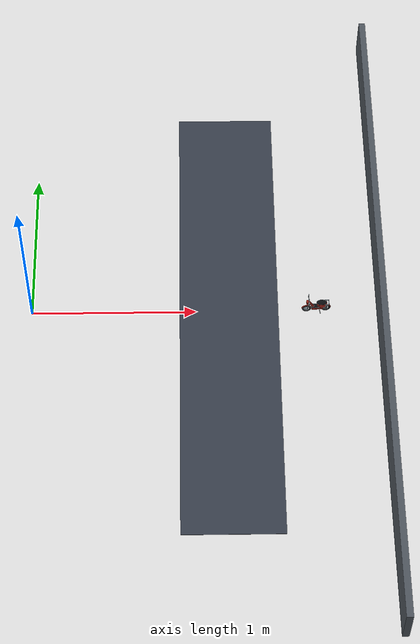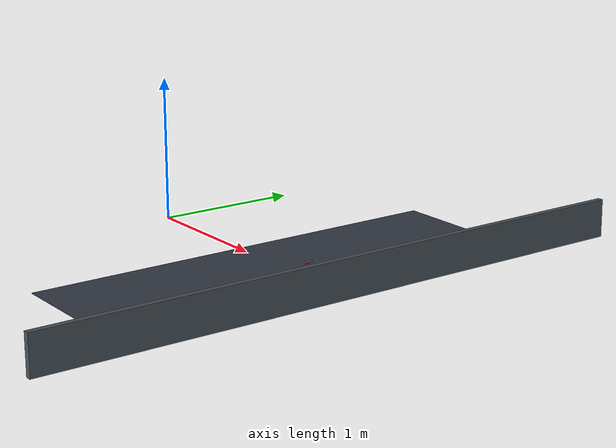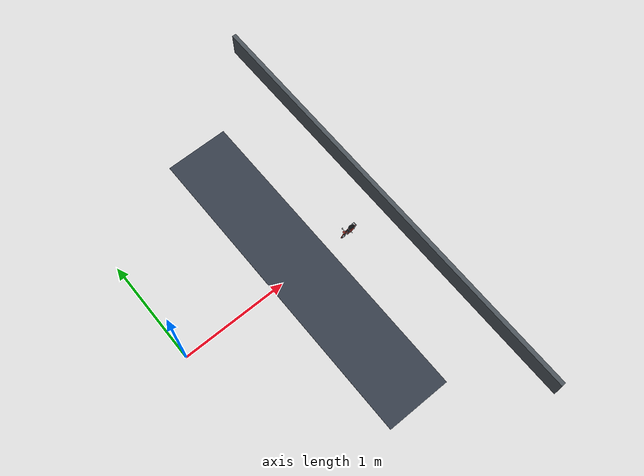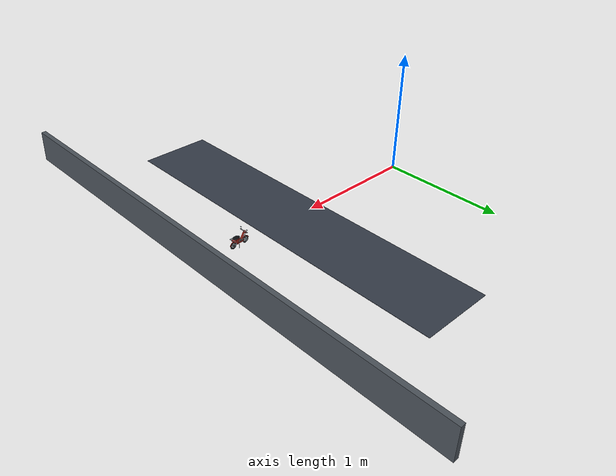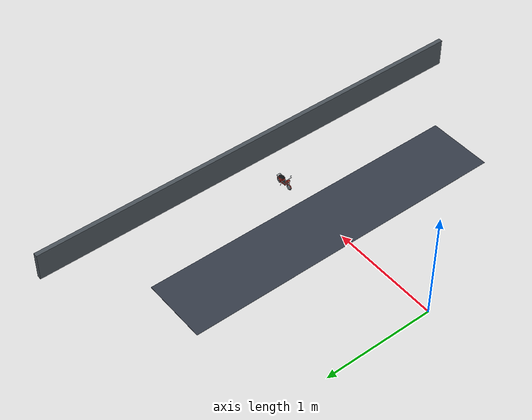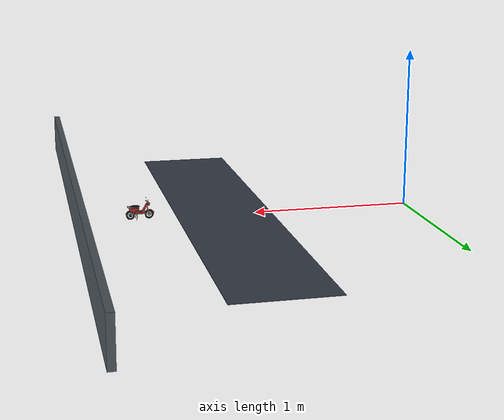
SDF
<sdf version="1.6">
 <world name="sq_community_4p2">
  <include><uri>model://sun</uri></include>
  <model name="sq4_road_east">
   <static>true</static>
   <pose>1.2000 0.0000 0.0000 0 0 0.00000</pose>
   <link name="surface">
    <visual name="surface_vis">
     <pose>0.0000 0.0000 0.0015 0 0 0.00000</pose>
     <geometry><box><size>0.6000 3.0000 0.0030</size></box></geometry>
     <material>
      <ambient>0.2100 0.2400 0.2900 1.0000</ambient>
      <diffuse>0.2100 0.2400 0.2900 1.0000</diffuse>
     </material>
    </visual>
   </link>
  </model>
  <model name="sq4_boundary_east">
   <static>true</static>
   <pose>2.1200 0.0000 0.0000 0 0 0.00000</pose>
   <link name="wall">
    <visual name="wall_vis">
     <pose>0.0000 0.0000 0.1300 0 0 0.00000</pose>
     <geometry><box><size>0.0400 4.2400 0.2600</size></box></geometry>
     <material>
      <ambient>0.3000 0.3300 0.3600 1.0000</ambient>
      <diffuse>0.3000 0.3300 0.3600 1.0000</diffuse>
     </material>
    </visual>
    <collision name="wall_col">
     <pose>0.0000 0.0000 0.1300 0 0 0.00000</pose>
     <geometry><box><size>0.0400 4.2400 0.2600</size></box></geometry>
    </collision>
   </link>
  </model>
  <model name="sq4_ebike_02">
   <static>true</static>
   <pose>1.730000 0.002000 0.004000 0.00000000 0 3.19395253</pose>
   <link name="body">
    <visual name="body_visual">
     <geometry><mesh><uri>model://sq_ebikes_3d/meshes/ebike_1.dae</uri></mesh></geometry>
    </visual>
    <collision name="body_collision">
     <pose>0 0 0.065000 0 0 0</pose>
     <geometry><box><size>0.180000 0.075000 0.130000</size></box></geometry>
    </collision>
   </link>
  </model>
 </world>
</sdf>
